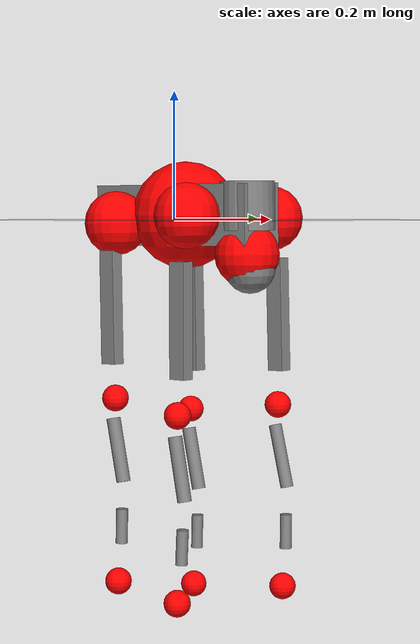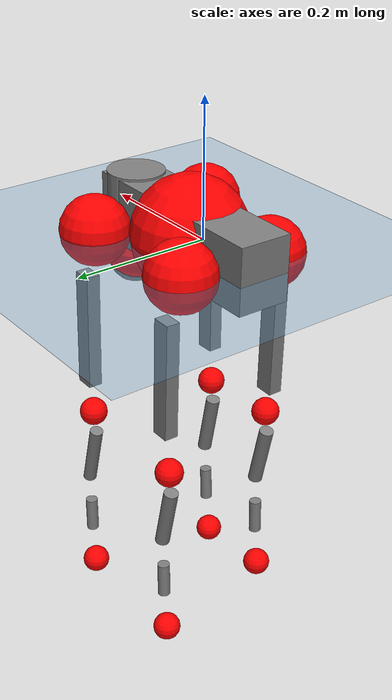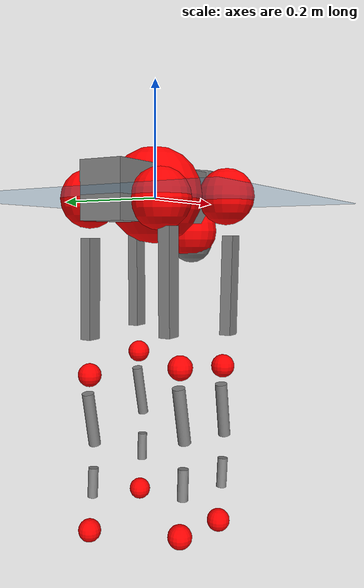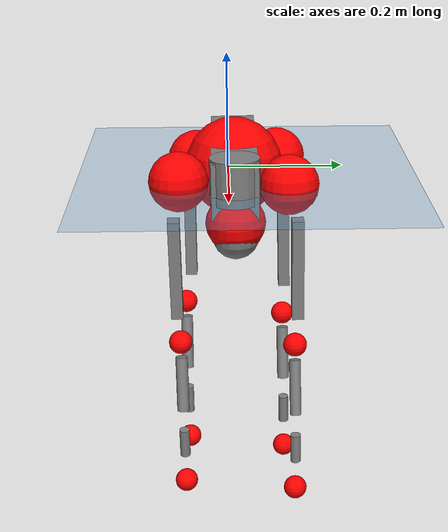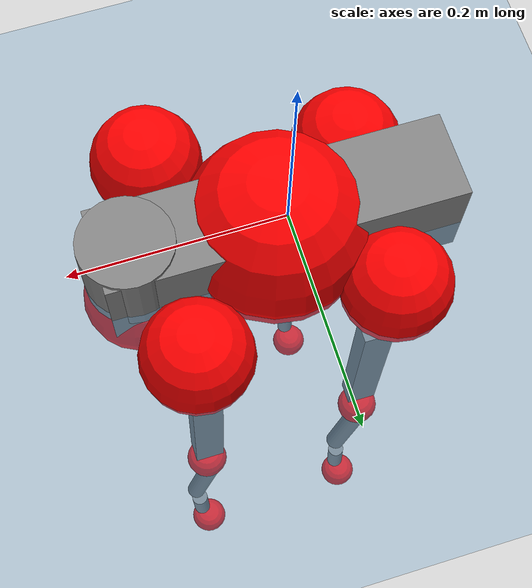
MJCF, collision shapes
<mujoco model="go2">
  <compiler angle="radian" assetdir="assets" balanceinertia="true" inertiafromgeom="false"/>

  <option timestep="0.005" density="1.2" viscosity="2e-05"/>

  <size nkey="1"/>

  <visual>
    <quality shadowsize="8192"/>
    <map shadowclip="0.5"/>
  </visual>

  <default>
    <default class="/">
      <geom contype="0" conaffinity="0" group="1" solref="-1000 -80"/>
      <site size="0.01 0.005 0.005" group="5"/>
      <general forcelimited="true" biastype="affine" gainprm="20" biasprm="0 -20 -0.5"/>
      <default class="go2">
        <joint armature="0.01" damping="0.01" frictionloss="0.2"/>
        <geom condim="1" margin="0.001"/>
        <default class="visual">
          <geom type="mesh" group="2"/>
        </default>
        <default class="collision">
          <geom group="3"/>
          <default class="foot">
            <geom size="0.022 0 0" condim="6" priority="1" friction="0.8 0.02 0.01" solimp="0.015 1 0.022"/>
          </default>
        </default>
        <default class="reward_collision_sphere">
          <geom group="5" rgba="1 0 0 1"/>
        </default>
      </default>
    </default>
  </default>

  <asset>
    <texture type="skybox" colorspace="auto" name="//unnamed_texture_0" builtin="gradient" rgb1="0.95 0.95 0.95" rgb2="0.95 0.95 0.95" width="100" height="600"/>
    <texture type="2d" colorspace="auto" name="texplane" builtin="checker" rgb1="0.345 0.575 0.748" rgb2="0.345 0.575 0.748" markrgb="1 1 1" width="512" height="512"/>
    <material name="MatPlane" class="/" texture="texplane" texuniform="true" texrepeat="2 2" specular="0.9"/>
    <material name="metal" class="/" rgba="0.9 0.95 0.95 1"/>
    <material name="black" class="/" rgba="0 0 0 1"/>
    <material name="white" class="/"/>
    <material name="gray" class="/" rgba="0.671705 0.692426 0.77427 1"/>
    <mesh name="base_0" class="/" file="base_0.obj"/>
    <mesh name="base_1" class="/" file="base_1.obj"/>
    <mesh name="base_2" class="/" file="base_2.obj"/>
    <mesh name="base_3" class="/" file="base_3.obj"/>
    <mesh name="base_4" class="/" file="base_4.obj"/>
    <mesh name="hip_0" class="/" file="hip_0.obj"/>
    <mesh name="hip_1" class="/" file="hip_1.obj"/>
    <mesh name="thigh_0" class="/" file="thigh_0.obj"/>
    <mesh name="thigh_1" class="/" file="thigh_1.obj"/>
    <mesh name="thigh_mirror_0" class="/" file="thigh_mirror_0.obj"/>
    <mesh name="thigh_mirror_1" class="/" file="thigh_mirror_1.obj"/>
    <mesh name="calf_0" class="/" file="calf_0.obj"/>
    <mesh name="calf_1" class="/" file="calf_1.obj"/>
    <mesh name="calf_mirror_0" class="/" file="calf_mirror_0.obj"/>
    <mesh name="calf_mirror_1" class="/" file="calf_mirror_1.obj"/>
    <mesh name="foot" class="/" file="foot.obj"/>
  </asset>

  <worldbody>
    <geom name="floor" class="/" size="100 100 0.125" type="plane" group="0" material="MatPlane"/>
    <light name="toplight_shadow" class="/" pos="0 0 5" dir="0.0990148 0.0990148 -0.990148" type="directional" ambient="0.04 0.04 0.04" diffuse="0.55 0.55 0.55" specular="0.12 0.12 0.12"/>
    <light name="toplight_fill" class="/" pos="0 0 5" dir="0.0990148 0.0990148 -0.990148" type="directional" castshadow="false" ambient="0.04 0.04 0.04" diffuse="0.3 0.3 0.3" specular="0.08 0.08 0.08"/>
    <body name="trunk" childclass="go2" pos="0.0148928 0.0106948 0.00677671" quat="0.999981 0.0053041 -0.00306648 0.000143398">
      <inertial pos="0.0252263 0.00198683 -0.00592912" quat="0.00167148 0.736063 -0.00680745 0.676876" mass="3.82025" diaginertia="0.00228206 0.0160183 0.0958629"/>
      <joint name="//unnamed_joint_0" type="free" armature="0" damping="0" frictionloss="0"/>
      <geom name="//unnamed_geom_1" class="visual" material="black" mesh="base_0"/>
      <geom name="//unnamed_geom_2" class="visual" material="black" mesh="base_1"/>
      <geom name="//unnamed_geom_3" class="visual" material="black" mesh="base_2"/>
      <geom name="//unnamed_geom_4" class="visual" material="white" mesh="base_3"/>
      <geom name="//unnamed_geom_5" class="visual" material="gray" mesh="base_4"/>
      <geom name="trunk_1" class="collision" size="0.157862 0.0392347 0.047837" type="box"/>
      <geom name="trunk_2" class="collision" size="0.0419622 0.037766" pos="0.130204 0 0.0136187" type="cylinder"/>
      <geom name="trunk_3" class="collision" size="0.0394445" pos="0.133859 0 -0.0817124"/>
      <geom name="//unnamed_geom_9" class="reward_collision_sphere" size="0.0839245"/>
      <geom name="//unnamed_geom_10" class="reward_collision_sphere" size="0.0503547" pos="0.12792 0 -0.0612843"/>
      <site name="imu" pos="-0.0160318 -0.032056 0.0835201" size="0.00839245"/>
      <camera name="track" pos="0 -1.39801 0" quat="0.707107 0.707107 0 0" mode="trackcom"/>
      <camera name="ego_camera" pos="0.142539 0 0.0612843" quat="-0.5 -0.5 0.5 0.5"/>
      <body name="FL_hip" pos="0.0978789 0.0423105 -0.00686686" quat="0.999972 -0.000705647 -0.00682063 0.00289">
        <inertial pos="0.0133613 0.00985134 0.00846788" quat="0.497621 0.493991 0.510804 0.497419" mass="0.346877" diaginertia="1.5315e-05 9.77965e-05 0.00167166"/>
        <joint name="FL_hip_joint" pos="0 0 0" axis="0.999857 -0.00448499 0.0162972" stiffness="0.0320013" range="-1.01277 1.30882" armature="0.00352356" damping="0.0584565" frictionloss="0.107653"/>
        <geom name="//unnamed_geom_11" class="visual" material="metal" mesh="hip_0"/>
        <geom name="//unnamed_geom_12" class="visual" material="gray" mesh="hip_1"/>
        <geom name="//unnamed_geom_13" class="collision" size="0.0386053 0.0167849" pos="0 0.0559204 0" quat="0.707107 0.707107 0 0" type="cylinder"/>
        <geom name="//unnamed_geom_14" class="reward_collision_sphere" size="0.0503547" pos="0 0.0489304 0"/>
        <body name="FL_thigh" pos="-0.000701962 0.0632964 -0.00654321" quat="1 5.6012e-05 -0.000126597 -0.000273023">
          <inertial pos="-0.0165527 -0.0178587 -0.0581474" quat="0.831181 0.0828387 -0.0114682 0.549677" mass="0.723811" diaginertia="0.000121975 0.000914491 0.00446956"/>
          <joint name="FL_thigh_joint" pos="0 0 0" axis="-0.00635447 0.999226 0.0388147" range="-1.3245 3.25824" armature="0.00376247" damping="0.0824735" frictionloss="0.0997346"/>
          <geom name="//unnamed_geom_15" class="visual" material="metal" mesh="thigh_0"/>
          <geom name="//unnamed_geom_16" class="visual" material="gray" mesh="thigh_1"/>
          <geom name="//unnamed_geom_17" class="collision" size="0.0893796 0.0102807 0.0142672" pos="0 0 -0.145039" quat="0.707107 0 0.707107 0" type="box"/>
          <body name="FL_calf" pos="-0.000126517 -0.00444303 -0.288317" quat="0.999987 0.00128038 -0.00476954 0.000937692">
            <inertial pos="-0.00639706 -0.00889121 -0.181238" quat="0.749658 -0.000878843 0.02955 0.661165" mass="0.134166" diaginertia="3.20783e-05 0.000220609 0.000282758"/>
            <joint name="FL_calf_joint" pos="0 0 0" axis="-0.0233953 0.999724 -0.00194395" stiffness="0.00300116" range="-2.68195 -0.583541" armature="0.0124955" damping="0" frictionloss="0.193617"/>
            <geom name="//unnamed_geom_18" class="visual" material="gray" mesh="calf_0"/>
            <geom name="//unnamed_geom_19" class="visual" material="black" mesh="calf_1"/>
            <geom name="FL_calf0" class="collision" size="0.0100709 0.0503547" pos="0.00365485 0 -0.0817124" quat="0.994493 0 -0.104807 0" type="cylinder"/>
            <geom name="//unnamed_geom_21" class="collision" size="0.00923169 0.0272755" pos="0.00913712 0 -0.201557" quat="0.999688 0 0.0249974 0" type="cylinder"/>
            <geom name="//unnamed_geom_22" class="visual" pos="0 0 -0.290079" quat="1 0 0 0" material="black" mesh="foot"/>
            <geom name="FL_foot" class="foot" size="0.0152248" pos="-0.000913712 0 -0.290079"/>
            <geom name="//unnamed_geom_24" class="reward_collision_sphere" size="0.0209811"/>
            <geom name="//unnamed_geom_25" class="reward_collision_sphere" size="0.0209811" pos="-0.000913712 0 -0.290079"/>
            <site name="FL_foot" class="foot" pos="-0.000913712 0 -0.290079" size="0.00839245"/>
          </body>
        </body>
      </body>
      <body name="FR_hip" pos="0.0903233 -0.0453364 -0.000121345" quat="0.999993 0.00181043 0.00315051 0.00133336">
        <inertial pos="-0.0144066 -0.0065216 -0.000280584" quat="0.502069 0.50062 0.497946 0.499355" mass="0.273939" diaginertia="1.5895e-05 9.0933e-05 0.00218922"/>
        <joint name="FR_hip_joint" pos="0 0 0" axis="0.999836 -0.000961873 -0.0181003" stiffness="0.0493243" range="-1.22715 1.03379" armature="0.0149689" damping="0.0127073" frictionloss="0.0411776"/>
        <geom name="//unnamed_geom_26" class="visual" pos="0 -5.77463e-09 -2.47686e-07" quat="4.63268e-05 1 0 0" material="metal" mesh="hip_0"/>
        <geom name="//unnamed_geom_27" class="visual" pos="0 -9.36136e-09 6.12622e-07" quat="4.63268e-05 1 0 0" material="gray" mesh="hip_1"/>
        <geom name="//unnamed_geom_28" class="collision" size="0.0386053 0.0167849" pos="0 -0.0559204 0" quat="0.707107 0.707107 0 0" type="cylinder"/>
        <geom name="//unnamed_geom_29" class="reward_collision_sphere" size="0.0503547" pos="0 -0.0489304 0"/>
        <body name="FR_thigh" pos="-0.00141875 -0.0604487 -0.0134884" quat="0.999974 -0.000537698 0.0058909 0.00420678">
          <inertial pos="0.00929019 0.0312054 -0.0391789" quat="0.54465 -0.00781362 0.0892174 0.833868" mass="0.882019" diaginertia="0.000127878 0.00114972 0.00512141"/>
          <joint name="FR_thigh_joint" pos="0 0 0" axis="-0.000841909 -0.999842 0.0177547" stiffness="0.0106769" range="-3.37974 1.70158" armature="0.00850309" damping="0.00266175" frictionloss="0.107114"/>
          <geom name="//unnamed_geom_30" class="visual" material="metal" mesh="thigh_mirror_0"/>
          <geom name="//unnamed_geom_31" class="visual" material="gray" mesh="thigh_mirror_1"/>
          <geom name="//unnamed_geom_32" class="collision" size="0.0893796 0.0102807 0.0142672" pos="0 0 -0.145039" quat="0.707107 0 0.707107 0" type="box"/>
          <body name="FR_calf" pos="-0.0102463 0.00347938 -0.29095" quat="1 5.32232e-05 0.000110788 7.34725e-06">
            <inertial pos="-0.00558877 -0.00035644 -0.187344" quat="0.713457 -0.00129774 0.00727965 0.70066" mass="0.112785" diaginertia="2.09944e-05 0.000234546 0.000206727"/>
            <joint name="FR_calf_joint" pos="0 0 0" axis="-0.0242581 -0.998182 -0.0551719" stiffness="0.0462898" range="0.851757 2.77426" armature="0.007634" damping="0" frictionloss="0.126999"/>
            <geom name="//unnamed_geom_33" class="visual" material="gray" mesh="calf_mirror_0"/>
            <geom name="//unnamed_geom_34" class="visual" material="black" mesh="calf_mirror_1"/>
            <geom name="FR_calf0" class="collision" size="0.0109102 0.0503547" pos="0.00456856 0 -0.0817124" quat="0.995004 0 -0.0998334 0" type="cylinder"/>
            <geom name="//unnamed_geom_36" class="collision" size="0.00923169 0.0272755" pos="0.00913712 0 -0.201557" quat="0.999688 0 0.0249974 0" type="cylinder"/>
            <geom name="//unnamed_geom_37" class="visual" pos="0 0 -0.290079" quat="1 0 0 0" material="black" mesh="foot"/>
            <geom name="FR_foot" class="foot" size="0.01632" pos="-0.000913712 0 -0.290079"/>
            <geom name="//unnamed_geom_39" class="reward_collision_sphere" size="0.0209811"/>
            <geom name="//unnamed_geom_40" class="reward_collision_sphere" size="0.0209811" pos="-0.000913712 0 -0.290079"/>
            <site name="FR_foot" class="foot" pos="-0.000913712 0 -0.290079" size="0.00839245"/>
          </body>
        </body>
      </body>
      <body name="RL_hip" pos="-0.084746 0.0288175 -0.00911389" quat="0.999965 0.00486806 0.00594072 -0.00321946">
        <inertial pos="-0.01246 0.00564273 -0.00247294" quat="0.504127 0.497522 0.497027 0.501291" mass="0.371713" diaginertia="1.74048e-05 8.40777e-05 0.0023457"/>
        <joint name="RL_hip_joint" pos="0 0 0" axis="-0.999764 -0.0189253 0.0106442" range="-0.971673 0.989012" armature="0.00803752" damping="0" frictionloss="0.111806"/>
        <geom name="//unnamed_geom_41" class="visual" pos="7.88413e-09 0 1.54547e-06" quat="4.63268e-05 0 1 0" material="metal" mesh="hip_0"/>
        <geom name="//unnamed_geom_42" class="visual" pos="1.27811e-08 0 1.37061e-06" quat="4.63268e-05 0 1 0" material="gray" mesh="hip_1"/>
        <geom name="//unnamed_geom_43" class="collision" size="0.0386053 0.0167849" pos="0 0.0559204 0" quat="0.707107 0.707107 0 0" type="cylinder"/>
        <geom name="//unnamed_geom_44" class="reward_collision_sphere" size="0.0503547" pos="0 0.0489304 0"/>
        <body name="RL_thigh" pos="0.0142689 0.0595153 -0.0111181" quat="0.999974 -0.00123539 -0.0071095 9.39033e-05">
          <inertial pos="-0.00107261 -0.0117574 -0.0407507" quat="0.821974 0.0226924 -0.0351384 0.567987" mass="0.785023" diaginertia="0.000109968 0.00111383 0.00378939"/>
          <joint name="RL_thigh_joint" pos="0 0 0" axis="-0.0019939 0.999992 0.00353686" range="-0.461278 4.54072" armature="0.0121888" damping="0.0828203" frictionloss="0.220236"/>
          <geom name="//unnamed_geom_45" class="visual" material="metal" mesh="thigh_0"/>
          <geom name="//unnamed_geom_46" class="visual" material="gray" mesh="thigh_1"/>
          <geom name="//unnamed_geom_47" class="collision" size="0.0893796 0.0102807 0.0142672" pos="0 0 -0.145039" quat="0.707107 0 0.707107 0" type="box"/>
          <body name="RL_calf" pos="-0.00607914 -0.00341847 -0.298094" quat="1 6.50947e-06 -0.000121777 0.000235934">
            <inertial pos="0.00208167 -0.000199382 -0.201672" quat="0.710377 -0.000115111 -0.0011768 0.70382" mass="0.143692" diaginertia="2.95605e-05 0.000241122 0.00025406"/>
            <joint name="RL_calf_joint" pos="0 0 0" axis="-0.00554889 0.999965 -0.00618523" stiffness="0.00782491" range="-2.62441 -0.859142" armature="0.0121191" damping="0.0715372" frictionloss="0.174393"/>
            <geom name="//unnamed_geom_48" class="visual" material="gray" mesh="calf_0"/>
            <geom name="//unnamed_geom_49" class="visual" material="black" mesh="calf_1"/>
            <geom name="RL_calf0" class="collision" size="0.0109102 0.0503547" pos="0.00456856 0 -0.0817124" quat="0.995004 0 -0.0998334 0" type="cylinder"/>
            <geom name="//unnamed_geom_51" class="collision" size="0.00923169 0.0272755" pos="0.00913712 0 -0.201557" quat="0.999688 0 0.0249974 0" type="cylinder"/>
            <geom name="//unnamed_geom_52" class="visual" pos="0 0 -0.290079" quat="1 0 0 0" material="black" mesh="foot"/>
            <geom name="RL_foot" class="foot" size="0.0111263" pos="-0.000913712 0 -0.290079"/>
            <geom name="//unnamed_geom_54" class="reward_collision_sphere" size="0.0209811"/>
            <geom name="//unnamed_geom_55" class="reward_collision_sphere" size="0.0209811" pos="-0.000913712 0 -0.290079"/>
            <site name="RL_foot" class="foot" pos="-0.000913712 0 -0.290079" size="0.00839245"/>
          </body>
        </body>
      </body>
      <body name="RR_hip" pos="-0.0874258 -0.0180267 -0.011988" quat="0.999985 -0.0024735 -0.00469608 -0.00122559">
        <inertial pos="0.000284091 -0.0133464 0.0011283" quat="0.548269 0.464354 0.463991 0.518159" mass="0.407792" diaginertia="1.56934e-05 8.78985e-05 0.00245957"/>
        <joint name="RR_hip_joint" pos="0 0 0" axis="-0.999825 -0.00556478 0.0178373" range="-1.11875 1.04504" armature="0.00150254" damping="0" frictionloss="0.27834"/>
        <geom name="//unnamed_geom_56" class="visual" pos="-7.87575e-09 -5.77463e-09 1.79316e-06" quat="2.14617e-09 4.63268e-05 4.63268e-05 -1" material="metal" mesh="hip_0"/>
        <geom name="//unnamed_geom_57" class="visual" pos="-1.28019e-08 -9.36136e-09 7.57992e-07" quat="2.14617e-09 4.63268e-05 4.63268e-05 -1" material="gray" mesh="hip_1"/>
        <geom name="//unnamed_geom_58" class="collision" size="0.0386053 0.0167849" pos="0 -0.0559204 0" quat="0.707107 0.707107 0 0" type="cylinder"/>
        <geom name="//unnamed_geom_59" class="reward_collision_sphere" size="0.0503547" pos="0 -0.0489304 0"/>
        <body name="RR_thigh" pos="-0.000389677 -0.0630253 0.0123972" quat="0.999993 -0.00112673 -0.00183292 -0.00309336">
          <inertial pos="-0.00255448 0.0235642 -0.0458548" quat="0.550835 -0.0193023 0.0855791 0.829991" mass="0.809691" diaginertia="0.000139452 0.00105241 0.0052239"/>
          <joint name="RR_thigh_joint" pos="0 0 0" axis="-0.0500243 -0.998745 0.00260616" stiffness="0.0521175" range="-4.25977 0.333415" armature="0.00505367" damping="0.0263443" frictionloss="0.21031"/>
          <geom name="//unnamed_geom_60" class="visual" material="metal" mesh="thigh_mirror_0"/>
          <geom name="//unnamed_geom_61" class="visual" material="gray" mesh="thigh_mirror_1"/>
          <geom name="//unnamed_geom_62" class="collision" size="0.0893796 0.0102807 0.0142672" pos="0 0 -0.145039" quat="0.707107 0 0.707107 0" type="box"/>
          <body name="RR_calf" pos="0.0170195 -0.0112784 -0.286792" quat="0.999998 0.00142179 0.00127405 -1.42944e-05">
            <inertial pos="-0.0133453 -0.00121159 -0.201401" quat="0.687813 0.0208528 0.00755866 0.725549" mass="0.136339" diaginertia="3.14359e-05 0.000330974 0.00025844"/>
            <joint name="RR_calf_joint" pos="0 0 0" axis="0.0188892 -0.999822 0.000238871" range="0.616237 2.39228" armature="0.0139212" damping="0" frictionloss="0.123845"/>
            <geom name="//unnamed_geom_63" class="visual" material="gray" mesh="calf_mirror_0"/>
            <geom name="//unnamed_geom_64" class="visual" material="black" mesh="calf_mirror_1"/>
            <geom name="RR_calf0" class="collision" size="0.0109102 0.0503547" pos="0.00456856 0 -0.0817124" quat="0.995004 0 -0.0998334 0" type="cylinder"/>
            <geom name="//unnamed_geom_66" class="collision" size="0.00923169 0.0272755" pos="0.00913712 0 -0.201557" quat="0.999688 0 0.0249974 0" type="cylinder"/>
            <geom name="//unnamed_geom_67" class="visual" pos="0 0 -0.290079" quat="1 0 0 0" material="black" mesh="foot"/>
            <geom name="RR_foot" class="foot" size="0.020203" pos="-0.000913712 0 -0.290079"/>
            <geom name="//unnamed_geom_69" class="reward_collision_sphere" size="0.0209811"/>
            <geom name="//unnamed_geom_70" class="reward_collision_sphere" size="0.0209811" pos="-0.000913712 0 -0.290079"/>
            <site name="RR_foot" class="foot" pos="-0.000913712 0 -0.290079" size="0.00839245"/>
          </body>
        </body>
      </body>
    </body>
  </worldbody>

  <contact>
    <pair class="/" geom1="floor" geom2="FL_foot" name="//unnamed_contact_0"/>
    <pair class="/" geom1="floor" geom2="FR_foot" name="//unnamed_contact_1"/>
    <pair class="/" geom1="floor" geom2="RL_foot" name="//unnamed_contact_2"/>
    <pair class="/" geom1="floor" geom2="RR_foot" name="//unnamed_contact_3"/>
  </contact>

  <actuator>
    <general name="FL_hip" class="/" joint="FL_hip_joint" forcerange="-21.119 21.119" gainprm="16.8497" biasprm="0 -16.8497 -0.415309"/>
    <general name="FL_thigh" class="/" joint="FL_thigh_joint" forcerange="-26.1912 26.1912" gainprm="16.8497" biasprm="0 -16.8497 -0.415309"/>
    <general name="FL_calf" class="/" joint="FL_calf_joint" forcerange="-40.3562 40.3562" gainprm="16.8497" biasprm="0 -16.8497 -0.415309"/>
    <general name="FR_hip" class="/" joint="FR_hip_joint" forcerange="-8.01092 8.01092" gainprm="16.8497" biasprm="0 -16.8497 -0.415309"/>
    <general name="FR_thigh" class="/" joint="FR_thigh_joint" forcerange="-19.1372 19.1372" gainprm="16.8497" biasprm="0 -16.8497 -0.415309"/>
    <general name="FR_calf" class="/" joint="FR_calf_joint" forcerange="-54.3111 54.3111" gainprm="16.8497" biasprm="0 -16.8497 -0.415309"/>
    <general name="RL_hip" class="/" joint="RL_hip_joint" forcerange="-21.8564 21.8564" gainprm="16.8497" biasprm="0 -16.8497 -0.415309"/>
    <general name="RL_thigh" class="/" joint="RL_thigh_joint" forcerange="-21.9611 21.9611" gainprm="16.8497" biasprm="0 -16.8497 -0.415309"/>
    <general name="RL_calf" class="/" joint="RL_calf_joint" forcerange="-36.142 36.142" gainprm="16.8497" biasprm="0 -16.8497 -0.415309"/>
    <general name="RR_hip" class="/" joint="RR_hip_joint" forcerange="-17.827 17.827" gainprm="16.8497" biasprm="0 -16.8497 -0.415309"/>
    <general name="RR_thigh" class="/" joint="RR_thigh_joint" forcerange="-24.2008 24.2008" gainprm="16.8497" biasprm="0 -16.8497 -0.415309"/>
    <general name="RR_calf" class="/" joint="RR_calf_joint" forcerange="-18.2539 18.2539" gainprm="16.8497" biasprm="0 -16.8497 -0.415309"/>
  </actuator>

  <sensor>
    <gyro site="imu" name="imu_angular_velocity"/>
    <velocimeter site="imu" name="imu_linear_velocity"/>
    <framelinvel objtype="site" objname="FL_foot" name="FL_foot_global_linear_velocity"/>
    <framelinvel objtype="site" objname="FR_foot" name="FR_foot_global_linear_velocity"/>
    <framelinvel objtype="site" objname="RL_foot" name="RL_foot_global_linear_velocity"/>
    <framelinvel objtype="site" objname="RR_foot" name="RR_foot_global_linear_velocity"/>
  </sensor>

  <keyframe>
    <key name="home" qpos="0 0 0.325 1 0 0 0 0.1 0.8 -1.5 -0.1 -0.8 1.5 -0.1 0.8 -1.5 0.1 -0.8 1.5"/>
  </keyframe>
</mujoco>
